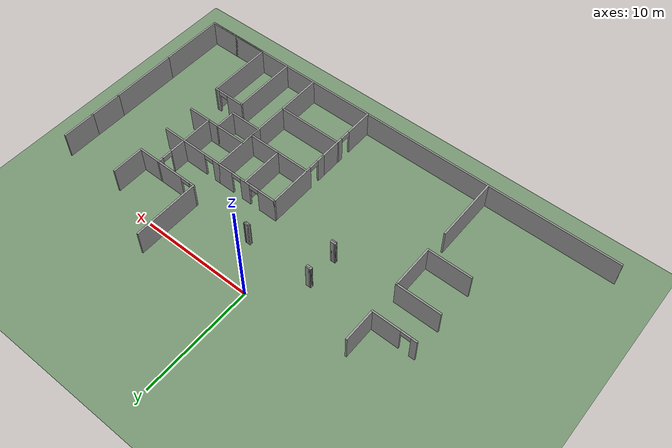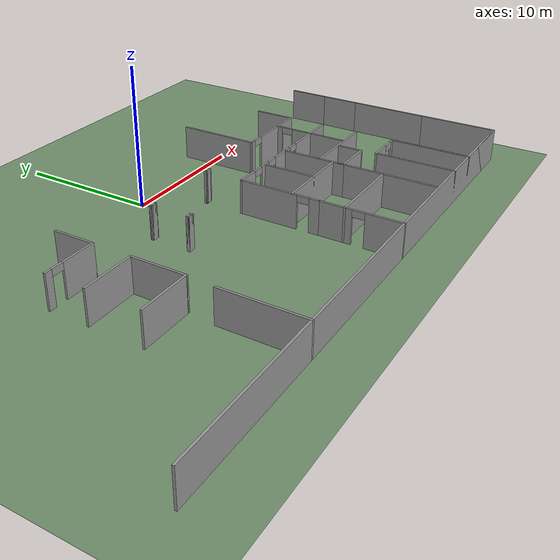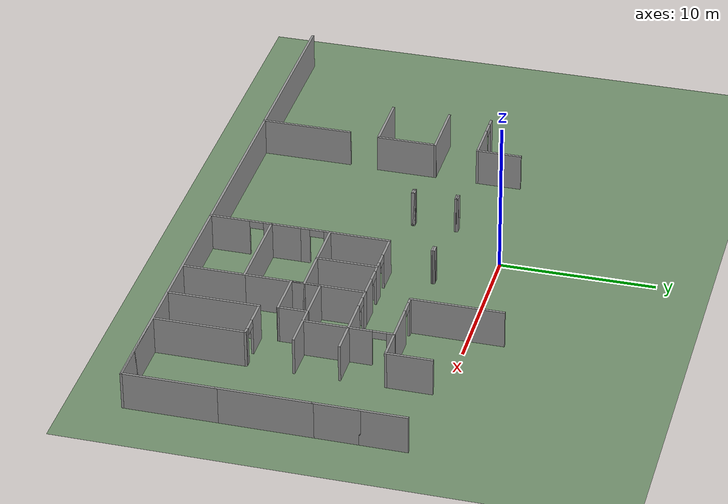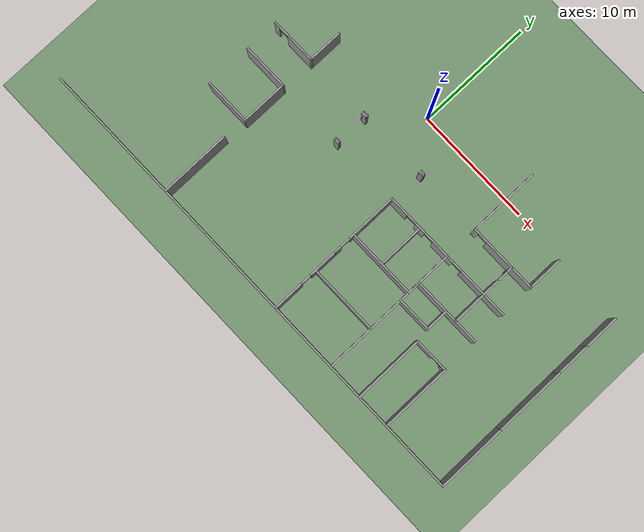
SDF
<sdf version="1.7">
 <world name="default">
  <model name="ground_plane">
   <static>1</static>
   <link name="link">
    <collision name="collision">
     <geometry><plane><normal>0 0 1</normal><size>600 600</size></plane></geometry>
     <surface>
      <contact><collide_bitmask>65535</collide_bitmask></contact>
      <friction><ode><mu>100</mu><mu2>50</mu2></ode></friction>
     </surface>
    </collision>
    <visual name="visual">
     <cast_shadows>0</cast_shadows>
     <geometry><plane><normal>0 0 1</normal><size>100 100</size></plane></geometry>
     <material><ambient>0.45 0.57 0.43 1</ambient><diffuse>0.45 0.57 0.43 1</diffuse></material>
    </visual>
   </link>
  </model>
  <model name="myhal_V3">
   <pose>-0.2201 2.1339 0 0 -0 0</pose>
   <link name="Wall_327">
    <collision name="Wall_327_Collision">
     <geometry><box><size>3 0.15 2.5</size></box></geometry>
     <pose>0 0 1.25 0 -0 0</pose>
    </collision>
    <visual name="Wall_327_Visual">
     <pose>0 0 1.25 0 -0 0</pose>
     <geometry><box><size>3 0.15 2.5</size></box></geometry>
     <material>
      <script><uri>file://media/materials/scripts/gazebo.material</uri><name>Gazebo/Grey</name></script>
      <ambient>1 1 1 1</ambient>
     </material>
     <meta><layer>0</layer></meta>
    </visual>
    <pose>20.475 -4.35 0 0 -0 -1.5708</pose>
   </link>
   <link name="Wall_328">
    <collision name="Wall_328_Collision">
     <geometry><box><size>3 0.15 2.5</size></box></geometry>
     <pose>0 0 1.25 0 -0 0</pose>
    </collision>
    <visual name="Wall_328_Visual">
     <pose>0 0 1.25 0 -0 0</pose>
     <geometry><box><size>3 0.15 2.5</size></box></geometry>
     <material>
      <script><uri>file://media/materials/scripts/gazebo.material</uri><name>Gazebo/Grey</name></script>
      <ambient>1 1 1 1</ambient>
     </material>
     <meta><layer>0</layer></meta>
    </visual>
    <pose>20.475 -7.2 0 0 -0 -1.5708</pose>
   </link>
   <link name="Wall_330">
    <collision name="Wall_330_Collision">
     <geometry><box><size>6 0.15 2.5</size></box></geometry>
     <pose>0 0 1.25 0 -0 0</pose>
    </collision>
    <visual name="Wall_330_Visual">
     <pose>0 0 1.25 0 -0 0</pose>
     <geometry><box><size>6 0.15 2.5</size></box></geometry>
     <material>
      <script><uri>file://media/materials/scripts/gazebo.material</uri><name>Gazebo/Grey</name></script>
      <ambient>1 1 1 1</ambient>
     </material>
     <meta><layer>0</layer></meta>
    </visual>
    <pose>20.475 -11.55 0 0 -0 -1.5708</pose>
   </link>
   <link name="Wall_331">
    <collision name="Wall_331_Collision">
     <geometry><box><size>6 0.15 2.5</size></box></geometry>
     <pose>0 0 1.25 0 -0 0</pose>
    </collision>
    <visual name="Wall_331_Visual">
     <pose>0 0 1.25 0 -0 0</pose>
     <geometry><box><size>6 0.15 2.5</size></box></geometry>
     <material>
      <script><uri>file://media/materials/scripts/gazebo.material</uri><name>Gazebo/Grey</name></script>
      <ambient>1 1 1 1</ambient>
     </material>
     <meta><layer>0</layer></meta>
    </visual>
    <pose>20.475 -17.4 0 0 -0 -1.5708</pose>
   </link>
   <link name="Wall_352">
    <collision name="Wall_352_Collision">
     <geometry><box><size>41 0.15 2.5</size></box></geometry>
     <pose>0 0 1.25 0 -0 0</pose>
    </collision>
    <visual name="Wall_352_Visual">
     <pose>0 0 1.25 0 -0 0</pose>
     <geometry><box><size>41 0.15 2.5</size></box></geometry>
     <material>
      <script><uri>file://media/materials/scripts/gazebo.material</uri><name>Gazebo/Grey</name></script>
      <ambient>1 1 1 1</ambient>
     </material>
     <meta><layer>0</layer></meta>
    </visual>
    <pose>-0.05 -20.325 0 0 -0 0</pose>
   </link>
   <link name="Wall_429">
    <collision name="Wall_429_Collision">
     <geometry><box><size>6 0.15 2.5</size></box></geometry>
     <pose>0 0 1.25 0 -0 0</pose>
    </collision>
    <visual name="Wall_429_Visual">
     <pose>0 0 1.25 0 -0 0</pose>
     <geometry><box><size>6 0.15 2.5</size></box></geometry>
     <material>
      <script><uri>file://media/materials/scripts/gazebo.material</uri><name>Gazebo/Grey</name></script>
      <ambient>1 1 1 1</ambient>
     </material>
     <meta><layer>0</layer></meta>
    </visual>
    <pose>-8.925 -17.4 0 0 -0 1.5708</pose>
   </link>
   <link name="Wall_444">
    <pose>-10.7 -5.775 0 0 -0 0</pose>
    <visual name="Wall_444_Visual_0">
     <pose>-1.73399 0 1.25 0 -0 0</pose>
     <geometry><box><size>0.532014 0.15 2.5</size></box></geometry>
     <material>
      <script><uri>file://media/materials/scripts/gazebo.material</uri><name>Gazebo/Grey</name></script>
      <ambient>1 1 1 1</ambient>
     </material>
     <meta><layer>0</layer></meta>
    </visual>
    <collision name="Wall_444_Collision_0">
     <geometry><box><size>0.532014 0.15 2.5</size></box></geometry>
     <pose>-1.73399 0 1.25 0 -0 0</pose>
    </collision>
    <visual name="Wall_444_Visual_1">
     <pose>0.716007 0 1.25 0 -0 0</pose>
     <geometry><box><size>2.56799 0.15 2.5</size></box></geometry>
     <material>
      <script><uri>file://media/materials/scripts/gazebo.material</uri><name>Gazebo/Grey</name></script>
      <ambient>1 1 1 1</ambient>
     </material>
     <meta><layer>0</layer></meta>
    </visual>
    <collision name="Wall_444_Collision_1">
     <geometry><box><size>2.56799 0.15 2.5</size></box></geometry>
     <pose>0.716007 0 1.25 0 -0 0</pose>
    </collision>
    <visual name="Wall_444_Visual_2">
     <pose>-1.01799 0 2.25 0 -0 0</pose>
     <geometry><box><size>0.9 0.15 0.5</size></box></geometry>
     <material>
      <script><uri>file://media/materials/scripts/gazebo.material</uri><name>Gazebo/Grey</name></script>
      <ambient>1 1 1 1</ambient>
     </material>
     <meta><layer>0</layer></meta>
    </visual>
    <collision name="Wall_444_Collision_2">
     <geometry><box><size>0.9 0.15 0.5</size></box></geometry>
     <pose>-1.01799 0 2.25 0 -0 0</pose>
    </collision>
   </link>
   <link name="Wall_449">
    <collision name="Wall_449_Collision">
     <geometry><box><size>3 0.15 2.5</size></box></geometry>
     <pose>0 0 1.25 0 -0 0</pose>
    </collision>
    <visual name="Wall_449_Visual">
     <pose>0 0 1.25 0 -0 0</pose>
     <geometry><box><size>3 0.15 2.5</size></box></geometry>
     <material>
      <script><uri>file://media/materials/scripts/gazebo.material</uri><name>Gazebo/Grey</name></script>
      <ambient>1 1 1 1</ambient>
     </material>
     <meta><layer>0</layer></meta>
    </visual>
    <pose>-8.775 -4.35 0 0 -0 -1.5708</pose>
   </link>
   <link name="Wall_458">
    <collision name="Wall_458_Collision">
     <geometry><box><size>4 0.15 2.5</size></box></geometry>
     <pose>0 0 1.25 0 -0 0</pose>
    </collision>
    <visual name="Wall_458_Visual">
     <pose>0 0 1.25 0 -0 0</pose>
     <geometry><box><size>4 0.15 2.5</size></box></geometry>
     <material>
      <script><uri>file://media/materials/scripts/gazebo.material</uri><name>Gazebo/Grey</name></script>
      <ambient>1 1 1 1</ambient>
     </material>
     <meta><layer>0</layer></meta>
    </visual>
    <pose>-10.7 -8.625 0 0 -0 0</pose>
   </link>
   <link name="Wall_461">
    <collision name="Wall_461_Collision">
     <geometry><box><size>4 0.15 2.5</size></box></geometry>
     <pose>0 0 1.25 0 -0 0</pose>
    </collision>
    <visual name="Wall_461_Visual">
     <pose>0 0 1.25 0 -0 0</pose>
     <geometry><box><size>4 0.15 2.5</size></box></geometry>
     <material>
      <script><uri>file://media/materials/scripts/gazebo.material</uri><name>Gazebo/Grey</name></script>
      <ambient>1 1 1 1</ambient>
     </material>
     <meta><layer>0</layer></meta>
    </visual>
    <pose>-10.7 -12.475 0 0 -0 0</pose>
   </link>
   <link name="Wall_462">
    <collision name="Wall_462_Collision">
     <geometry><box><size>4 0.15 2.5</size></box></geometry>
     <pose>0 0 1.25 0 -0 0</pose>
    </collision>
    <visual name="Wall_462_Visual">
     <pose>0 0 1.25 0 -0 0</pose>
     <geometry><box><size>4 0.15 2.5</size></box></geometry>
     <material>
      <script><uri>file://media/materials/scripts/gazebo.material</uri><name>Gazebo/Grey</name></script>
      <ambient>1 1 1 1</ambient>
     </material>
     <meta><layer>0</layer></meta>
    </visual>
    <pose>-8.775 -10.55 0 0 -0 1.5708</pose>
   </link>
   <link name="Wall_475">
    <collision name="Wall_475_Collision">
     <geometry><box><size>3 0.15 2.5</size></box></geometry>
     <pose>0 0 1.25 0 -0 0</pose>
    </collision>
    <visual name="Wall_475_Visual">
     <pose>0 0 1.25 0 -0 0</pose>
     <geometry><box><size>3 0.15 2.5</size></box></geometry>
     <material>
      <script><uri>file://media/materials/scripts/gazebo.material</uri><name>Gazebo/Grey</name></script>
      <ambient>1 1 1 1</ambient>
     </material>
     <meta><layer>0</layer></meta>
    </visual>
    <pose>14.625 -4.35 0 0 -0 -1.5708</pose>
   </link>
   <link name="Wall_476">
    <pose>11.7 -5.775 0 0 -0 3.14159</pose>
    <visual name="Wall_476_Visual_0">
     <pose>-0.696561 0 1.25 0 -0 0</pose>
     <geometry><box><size>4.60688 0.15 2.5</size></box></geometry>
     <material>
      <script><uri>file://media/materials/scripts/gazebo.material</uri><name>Gazebo/Grey</name></script>
      <ambient>1 1 1 1</ambient>
     </material>
     <meta><layer>0</layer></meta>
    </visual>
    <collision name="Wall_476_Collision_0">
     <geometry><box><size>4.60688 0.15 2.5</size></box></geometry>
     <pose>-0.696561 0 1.25 0 -0 0</pose>
    </collision>
    <visual name="Wall_476_Visual_1">
     <pose>2.75344 0 1.25 0 -0 0</pose>
     <geometry><box><size>0.493122 0.15 2.5</size></box></geometry>
     <material>
      <script><uri>file://media/materials/scripts/gazebo.material</uri><name>Gazebo/Grey</name></script>
      <ambient>1 1 1 1</ambient>
     </material>
     <meta><layer>0</layer></meta>
    </visual>
    <collision name="Wall_476_Collision_1">
     <geometry><box><size>0.493122 0.15 2.5</size></box></geometry>
     <pose>2.75344 0 1.25 0 -0 0</pose>
    </collision>
    <visual name="Wall_476_Visual_2">
     <pose>2.05688 0 2.25 0 -0 0</pose>
     <geometry><box><size>0.9 0.15 0.5</size></box></geometry>
     <material>
      <script><uri>file://media/materials/scripts/gazebo.material</uri><name>Gazebo/Grey</name></script>
      <ambient>1 1 1 1</ambient>
     </material>
     <meta><layer>0</layer></meta>
    </visual>
    <collision name="Wall_476_Collision_2">
     <geometry><box><size>0.9 0.15 0.5</size></box></geometry>
     <pose>2.05688 0 2.25 0 -0 0</pose>
    </collision>
   </link>
   <link name="Wall_477">
    <collision name="Wall_477_Collision">
     <geometry><box><size>6 0.15 2.5</size></box></geometry>
     <pose>0 0 1.25 0 -0 0</pose>
    </collision>
    <visual name="Wall_477_Visual">
     <pose>0 0 1.25 0 -0 0</pose>
     <geometry><box><size>6 0.15 2.5</size></box></geometry>
     <material>
      <script><uri>file://media/materials/scripts/gazebo.material</uri><name>Gazebo/Grey</name></script>
      <ambient>1 1 1 1</ambient>
     </material>
     <meta><layer>0</layer></meta>
    </visual>
    <pose>8.775 -2.85 0 0 -0 1.5708</pose>
   </link>
   <link name="Wall_482">
    <pose>2.925 -11.55 0 0 -0 -1.5708</pose>
    <visual name="Wall_482_Visual_0">
     <pose>-0.826638 0 1.25 0 -0 0</pose>
     <geometry><box><size>4.34672 0.15 2.5</size></box></geometry>
     <material>
      <script><uri>file://media/materials/scripts/gazebo.material</uri><name>Gazebo/Grey</name></script>
      <ambient>1 1 1 1</ambient>
     </material>
     <meta><layer>0</layer></meta>
    </visual>
    <collision name="Wall_482_Collision_0">
     <geometry><box><size>4.34672 0.15 2.5</size></box></geometry>
     <pose>-0.826638 0 1.25 0 -0 0</pose>
    </collision>
    <visual name="Wall_482_Visual_1">
     <pose>2.62336 0 1.25 0 -0 0</pose>
     <geometry><box><size>0.753277 0.15 2.5</size></box></geometry>
     <material>
      <script><uri>file://media/materials/scripts/gazebo.material</uri><name>Gazebo/Grey</name></script>
      <ambient>1 1 1 1</ambient>
     </material>
     <meta><layer>0</layer></meta>
    </visual>
    <collision name="Wall_482_Collision_1">
     <geometry><box><size>0.753277 0.15 2.5</size></box></geometry>
     <pose>2.62336 0 1.25 0 -0 0</pose>
    </collision>
    <visual name="Wall_482_Visual_2">
     <pose>1.79672 0 2.25 0 -0 0</pose>
     <geometry><box><size>0.9 0.15 0.5</size></box></geometry>
     <material>
      <script><uri>file://media/materials/scripts/gazebo.material</uri><name>Gazebo/Grey</name></script>
      <ambient>1 1 1 1</ambient>
     </material>
     <meta><layer>0</layer></meta>
    </visual>
    <collision name="Wall_482_Collision_2">
     <geometry><box><size>0.9 0.15 0.5</size></box></geometry>
     <pose>1.79672 0 2.25 0 -0 0</pose>
    </collision>
   </link>
   <link name="Wall_484">
    <pose>2.925 -17.4 0 0 -0 -1.5708</pose>
    <visual name="Wall_484_Visual_0">
     <pose>-1.77874 0 1.25 0 -0 0</pose>
     <geometry><box><size>2.44252 0.15 2.5</size></box></geometry>
     <material>
      <script><uri>file://media/materials/scripts/gazebo.material</uri><name>Gazebo/Grey</name></script>
      <ambient>1 1 1 1</ambient>
     </material>
     <meta><layer>0</layer></meta>
    </visual>
    <collision name="Wall_484_Collision_0">
     <geometry><box><size>2.44252 0.15 2.5</size></box></geometry>
     <pose>-1.77874 0 1.25 0 -0 0</pose>
    </collision>
    <visual name="Wall_484_Visual_1">
     <pose>1.67126 0 1.25 0 -0 0</pose>
     <geometry><box><size>2.65748 0.15 2.5</size></box></geometry>
     <material>
      <script><uri>file://media/materials/scripts/gazebo.material</uri><name>Gazebo/Grey</name></script>
      <ambient>1 1 1 1</ambient>
     </material>
     <meta><layer>0</layer></meta>
    </visual>
    <collision name="Wall_484_Collision_1">
     <geometry><box><size>2.65748 0.15 2.5</size></box></geometry>
     <pose>1.67126 0 1.25 0 -0 0</pose>
    </collision>
    <visual name="Wall_484_Visual_2">
     <pose>-0.107481 0 2.25 0 -0 0</pose>
     <geometry><box><size>0.9 0.15 0.5</size></box></geometry>
     <material>
      <script><uri>file://media/materials/scripts/gazebo.material</uri><name>Gazebo/Grey</name></script>
      <ambient>1 1 1 1</ambient>
     </material>
     <meta><layer>0</layer></meta>
    </visual>
    <collision name="Wall_484_Collision_2">
     <geometry><box><size>0.9 0.15 0.5</size></box></geometry>
     <pose>-0.107481 0 2.25 0 -0 0</pose>
    </collision>
   </link>
   <link name="Wall_486">
    <pose>5.85 -8.625 0 0 -0 0</pose>
    <visual name="Wall_486_Visual_0">
     <pose>-2.13314 0 1.25 0 -0 0</pose>
     <geometry><box><size>1.73371 0.15 2.5</size></box></geometry>
     <material>
      <script><uri>file://media/materials/scripts/gazebo.material</uri><name>Gazebo/Grey</name></script>
      <ambient>1 1 1 1</ambient>
     </material>
     <meta><layer>0</layer></meta>
    </visual>
    <collision name="Wall_486_Collision_0">
     <geometry><box><size>1.73371 0.15 2.5</size></box></geometry>
     <pose>-2.13314 0 1.25 0 -0 0</pose>
    </collision>
    <visual name="Wall_486_Visual_1">
     <pose>0.10739 0 1.25 0 -0 0</pose>
     <geometry><box><size>0.94735 0.15 2.5</size></box></geometry>
     <material>
      <script><uri>file://media/materials/scripts/gazebo.material</uri><name>Gazebo/Grey</name></script>
      <ambient>1 1 1 1</ambient>
     </material>
     <meta><layer>0</layer></meta>
    </visual>
    <collision name="Wall_486_Collision_1">
     <geometry><box><size>0.94735 0.15 2.5</size></box></geometry>
     <pose>0.10739 0 1.25 0 -0 0</pose>
    </collision>
    <visual name="Wall_486_Visual_2">
     <pose>2.24053 0 1.25 0 -0 0</pose>
     <geometry><box><size>1.51893 0.15 2.5</size></box></geometry>
     <material>
      <script><uri>file://media/materials/scripts/gazebo.material</uri><name>Gazebo/Grey</name></script>
      <ambient>1 1 1 1</ambient>
     </material>
     <meta><layer>0</layer></meta>
    </visual>
    <collision name="Wall_486_Collision_2">
     <geometry><box><size>1.51893 0.15 2.5</size></box></geometry>
     <pose>2.24053 0 1.25 0 -0 0</pose>
    </collision>
    <visual name="Wall_486_Visual_3">
     <pose>-0.816286 0 2.25 0 -0 0</pose>
     <geometry><box><size>0.9 0.15 0.5</size></box></geometry>
     <material>
      <script><uri>file://media/materials/scripts/gazebo.material</uri><name>Gazebo/Grey</name></script>
      <ambient>1 1 1 1</ambient>
     </material>
     <meta><layer>0</layer></meta>
    </visual>
    <collision name="Wall_486_Collision_3">
     <geometry><box><size>0.9 0.15 0.5</size></box></geometry>
     <pose>-0.816286 0 2.25 0 -0 0</pose>
    </collision>
    <visual name="Wall_486_Visual_4">
     <pose>1.03106 0 2.25 0 -0 0</pose>
     <geometry><box><size>0.9 0.15 0.5</size></box></geometry>
     <material>
      <script><uri>file://media/materials/scripts/gazebo.material</uri><name>Gazebo/Grey</name></script>
      <ambient>1 1 1 1</ambient>
     </material>
     <meta><layer>0</layer></meta>
    </visual>
    <collision name="Wall_486_Collision_4">
     <geometry><box><size>0.9 0.15 0.5</size></box></geometry>
     <pose>1.03106 0 2.25 0 -0 0</pose>
    </collision>
   </link>
   <link name="Wall_487">
    <collision name="Wall_487_Collision">
     <geometry><box><size>4.01793 0.15 2.5</size></box></geometry>
     <pose>0 0 1.25 0 -0 0</pose>
    </collision>
    <visual name="Wall_487_Visual">
     <pose>0 0 1.25 0 -0 0</pose>
     <geometry><box><size>4.01793 0.15 2.5</size></box></geometry>
     <material>
      <script><uri>file://media/materials/scripts/gazebo.material</uri><name>Gazebo/Grey</name></script>
      <ambient>1 1 1 1</ambient>
     </material>
     <meta><layer>0</layer></meta>
    </visual>
    <pose>8.775 -10.559 0 0 -0 -1.5708</pose>
   </link>
   <link name="Wall_488">
    <collision name="Wall_488_Collision">
     <geometry><box><size>3.98206 0.15 2.5</size></box></geometry>
     <pose>0 0 1.25 0 -0 0</pose>
    </collision>
    <visual name="Wall_488_Visual">
     <pose>0 0 1.25 0 -0 0</pose>
     <geometry><box><size>3.98206 0.15 2.5</size></box></geometry>
     <material>
      <script><uri>file://media/materials/scripts/gazebo.material</uri><name>Gazebo/Grey</name></script>
      <ambient>1 1 1 1</ambient>
     </material>
     <meta><layer>0</layer></meta>
    </visual>
    <pose>8.775 -14.409 0 0 -0 -1.5708</pose>
   </link>
   <link name="Wall_489">
    <collision name="Wall_489_Collision">
     <geometry><box><size>4 0.15 2.5</size></box></geometry>
     <pose>0 0 1.25 0 -0 0</pose>
    </collision>
    <visual name="Wall_489_Visual">
     <pose>0 0 1.25 0 -0 0</pose>
     <geometry><box><size>4 0.15 2.5</size></box></geometry>
     <material>
      <script><uri>file://media/materials/scripts/gazebo.material</uri><name>Gazebo/Grey</name></script>
      <ambient>1 1 1 1</ambient>
     </material>
     <meta><layer>0</layer></meta>
    </visual>
    <pose>8.775 -18.25 0 0 -0 -1.5708</pose>
   </link>
   <link name="Wall_492">
    <collision name="Wall_492_Collision">
     <geometry><box><size>6 0.15 2.5</size></box></geometry>
     <pose>0 0 1.25 0 -0 0</pose>
    </collision>
    <visual name="Wall_492_Visual">
     <pose>0 0 1.25 0 -0 0</pose>
     <geometry><box><size>6 0.15 2.5</size></box></geometry>
     <material>
      <script><uri>file://media/materials/scripts/gazebo.material</uri><name>Gazebo/Grey</name></script>
      <ambient>1 1 1 1</ambient>
     </material>
     <meta><layer>0</layer></meta>
    </visual>
    <pose>5.85 -12.4929 0 0 -0 3.14159</pose>
   </link>
   <link name="Wall_495">
    <collision name="Wall_495_Collision">
     <geometry><box><size>6 0.15 2.5</size></box></geometry>
     <pose>0 0 1.25 0 -0 0</pose>
    </collision>
    <visual name="Wall_495_Visual">
     <pose>0 0 1.25 0 -0 0</pose>
     <geometry><box><size>6 0.15 2.5</size></box></geometry>
     <material>
      <script><uri>file://media/materials/scripts/gazebo.material</uri><name>Gazebo/Grey</name></script>
      <ambient>1 1 1 1</ambient>
     </material>
     <meta><layer>0</layer></meta>
    </visual>
    <pose>5.85 -16.325 0 0 -0 3.14159</pose>
   </link>
   <link name="Wall_507">
    <pose>11.7 -8.625 0 0 -0 0</pose>
    <visual name="Wall_507_Visual_0">
     <pose>-2.65028 0 1.25 0 -0 0</pose>
     <geometry><box><size>0.699436 0.15 2.5</size></box></geometry>
     <material>
      <script><uri>file://media/materials/scripts/gazebo.material</uri><name>Gazebo/Grey</name></script>
      <ambient>1 1 1 1</ambient>
     </material>
     <meta><layer>0</layer></meta>
    </visual>
    <collision name="Wall_507_Collision_0">
     <geometry><box><size>0.699436 0.15 2.5</size></box></geometry>
     <pose>-2.65028 0 1.25 0 -0 0</pose>
    </collision>
    <visual name="Wall_507_Visual_1">
     <pose>0.799718 0 1.25 0 -0 0</pose>
     <geometry><box><size>4.40056 0.15 2.5</size></box></geometry>
     <material>
      <script><uri>file://media/materials/scripts/gazebo.material</uri><name>Gazebo/Grey</name></script>
      <ambient>1 1 1 1</ambient>
     </material>
     <meta><layer>0</layer></meta>
    </visual>
    <collision name="Wall_507_Collision_1">
     <geometry><box><size>4.40056 0.15 2.5</size></box></geometry>
     <pose>0.799718 0 1.25 0 -0 0</pose>
    </collision>
    <visual name="Wall_507_Visual_2">
     <pose>-1.85056 0 2.25 0 -0 0</pose>
     <geometry><box><size>0.9 0.15 0.5</size></box></geometry>
     <material>
      <script><uri>file://media/materials/scripts/gazebo.material</uri><name>Gazebo/Grey</name></script>
      <ambient>1 1 1 1</ambient>
     </material>
     <meta><layer>0</layer></meta>
    </visual>
    <collision name="Wall_507_Collision_2">
     <geometry><box><size>0.9 0.15 0.5</size></box></geometry>
     <pose>-1.85056 0 2.25 0 -0 0</pose>
    </collision>
   </link>
   <link name="Wall_521">
    <collision name="Wall_521_Collision">
     <geometry><box><size>6 0.15 2.5</size></box></geometry>
     <pose>0 0 1.25 0 -0 0</pose>
    </collision>
    <visual name="Wall_521_Visual">
     <pose>0 0 1.25 0 -0 0</pose>
     <geometry><box><size>6 0.15 2.5</size></box></geometry>
     <material>
      <script><uri>file://media/materials/scripts/gazebo.material</uri><name>Gazebo/Grey</name></script>
      <ambient>1 1 1 1</ambient>
     </material>
     <meta><layer>0</layer></meta>
    </visual>
    <pose>17.55 -20.325 0 0 -0 3.14159</pose>
   </link>
   <link name="Wall_522">
    <collision name="Wall_522_Collision">
     <geometry><box><size>6 0.15 2.5</size></box></geometry>
     <pose>0 0 1.25 0 -0 0</pose>
    </collision>
    <visual name="Wall_522_Visual">
     <pose>0 0 1.25 0 -0 0</pose>
     <geometry><box><size>6 0.15 2.5</size></box></geometry>
     <material>
      <script><uri>file://media/materials/scripts/gazebo.material</uri><name>Gazebo/Grey</name></script>
      <ambient>1 1 1 1</ambient>
     </material>
     <meta><layer>0</layer></meta>
    </visual>
    <pose>14.625 -17.4 0 0 -0 1.5708</pose>
   </link>
   <link name="Wall_523">
    <pose>13.2 -14.475 0 0 -0 3.14159</pose>
    <visual name="Wall_523_Visual_0">
     <pose>-1.27635 0 1.25 0 -0 0</pose>
     <geometry><box><size>0.447294 0.15 2.5</size></box></geometry>
     <material>
      <script><uri>file://media/materials/scripts/gazebo.material</uri><name>Gazebo/Grey</name></script>
      <ambient>1 1 1 1</ambient>
     </material>
     <meta><layer>0</layer></meta>
    </visual>
    <collision name="Wall_523_Collision_0">
     <geometry><box><size>0.447294 0.15 2.5</size></box></geometry>
     <pose>-1.27635 0 1.25 0 -0 0</pose>
    </collision>
    <visual name="Wall_523_Visual_1">
     <pose>0.673647 0 1.25 0 -0 0</pose>
     <geometry><box><size>1.65271 0.15 2.5</size></box></geometry>
     <material>
      <script><uri>file://media/materials/scripts/gazebo.material</uri><name>Gazebo/Grey</name></script>
      <ambient>1 1 1 1</ambient>
     </material>
     <meta><layer>0</layer></meta>
    </visual>
    <collision name="Wall_523_Collision_1">
     <geometry><box><size>1.65271 0.15 2.5</size></box></geometry>
     <pose>0.673647 0 1.25 0 -0 0</pose>
    </collision>
    <visual name="Wall_523_Visual_2">
     <pose>-0.602706 0 2.25 0 -0 0</pose>
     <geometry><box><size>0.9 0.15 0.5</size></box></geometry>
     <material>
      <script><uri>file://media/materials/scripts/gazebo.material</uri><name>Gazebo/Grey</name></script>
      <ambient>1 1 1 1</ambient>
     </material>
     <meta><layer>0</layer></meta>
    </visual>
    <collision name="Wall_523_Collision_2">
     <geometry><box><size>0.9 0.15 0.5</size></box></geometry>
     <pose>-0.602706 0 2.25 0 -0 0</pose>
    </collision>
   </link>
   <link name="Wall_524">
    <collision name="Wall_524_Collision">
     <geometry><box><size>6 0.15 2.5</size></box></geometry>
     <pose>0 0 1.25 0 -0 0</pose>
    </collision>
    <visual name="Wall_524_Visual">
     <pose>0 0 1.25 0 -0 0</pose>
     <geometry><box><size>6 0.15 2.5</size></box></geometry>
     <material>
      <script><uri>file://media/materials/scripts/gazebo.material</uri><name>Gazebo/Grey</name></script>
      <ambient>1 1 1 1</ambient>
     </material>
     <meta><layer>0</layer></meta>
    </visual>
    <pose>11.775 -17.4 0 0 -0 -1.5708</pose>
   </link>
   <link name="Wall_527">
    <collision name="Wall_527_Collision">
     <geometry><box><size>6 0.15 2.5</size></box></geometry>
     <pose>0 0 1.25 0 -0 0</pose>
    </collision>
    <visual name="Wall_527_Visual">
     <pose>0 0 1.25 0 -0 0</pose>
     <geometry><box><size>6 0.15 2.5</size></box></geometry>
     <material>
      <script><uri>file://media/materials/scripts/gazebo.material</uri><name>Gazebo/Grey</name></script>
      <ambient>1 1 1 1</ambient>
     </material>
     <meta><layer>0</layer></meta>
    </visual>
    <pose>11.7 -11.475 0 0 -0 3.14159</pose>
   </link>
   <link name="Wall_530">
    <collision name="Wall_530_Collision">
     <geometry><box><size>3 0.15 2.5</size></box></geometry>
     <pose>0 0 1.25 0 -0 0</pose>
    </collision>
    <visual name="Wall_530_Visual">
     <pose>0 0 1.25 0 -0 0</pose>
     <geometry><box><size>3 0.15 2.5</size></box></geometry>
     <material>
      <script><uri>file://media/materials/scripts/gazebo.material</uri><name>Gazebo/Grey</name></script>
      <ambient>1 1 1 1</ambient>
     </material>
     <meta><layer>0</layer></meta>
    </visual>
    <pose>12.625 -10.05 0 0 -0 1.5708</pose>
   </link>
   <link name="Wall_532">
    <collision name="Wall_532_Collision">
     <geometry><box><size>2 0.15 2.5</size></box></geometry>
     <pose>0 0 1.25 0 -0 0</pose>
    </collision>
    <visual name="Wall_532_Visual">
     <pose>0 0 1.25 0 -0 0</pose>
     <geometry><box><size>2 0.15 2.5</size></box></geometry>
     <material>
      <script><uri>file://media/materials/scripts/gazebo.material</uri><name>Gazebo/Grey</name></script>
      <ambient>1 1 1 1</ambient>
     </material>
     <meta><layer>0</layer></meta>
    </visual>
    <pose>8.775 -12.4 0 0 -0 -1.5708</pose>
   </link>
   <link name="Wall_533">
    <collision name="Wall_533_Collision">
     <geometry><box><size>3 0.15 2.5</size></box></geometry>
     <pose>0 0 1.25 0 -0 0</pose>
    </collision>
    <visual name="Wall_533_Visual">
     <pose>0 0 1.25 0 -0 0</pose>
     <geometry><box><size>3 0.15 2.5</size></box></geometry>
     <material>
      <script><uri>file://media/materials/scripts/gazebo.material</uri><name>Gazebo/Grey</name></script>
      <ambient>1 1 1 1</ambient>
     </material>
     <meta><layer>0</layer></meta>
    </visual>
    <pose>10.2 -13.325 0 0 -0 0</pose>
   </link>
   <link name="Wall_534">
    <collision name="Wall_534_Collision">
     <geometry><box><size>2 0.15 2.5</size></box></geometry>
     <pose>0 0 1.25 0 -0 0</pose>
    </collision>
    <visual name="Wall_534_Visual">
     <pose>0 0 1.25 0 -0 0</pose>
     <geometry><box><size>2 0.15 2.5</size></box></geometry>
     <material>
      <script><uri>file://media/materials/scripts/gazebo.material</uri><name>Gazebo/Grey</name></script>
      <ambient>1 1 1 1</ambient>
     </material>
     <meta><layer>0</layer></meta>
    </visual>
    <pose>11.625 -12.4 0 0 -0 1.5708</pose>
   </link>
   <link name="Wall_536">
    <pose>12.625 -7.2 0 0 -0 1.5708</pose>
    <visual name="Wall_536_Visual_0">
     <pose>-0.714799 0 1.25 0 -0 0</pose>
     <geometry><box><size>1.5704 0.15 2.5</size></box></geometry>
     <material>
      <script><uri>file://media/materials/scripts/gazebo.material</uri><name>Gazebo/Grey</name></script>
      <ambient>1 1 1 1</ambient>
     </material>
     <meta><layer>0</layer></meta>
    </visual>
    <collision name="Wall_536_Collision_0">
     <geometry><box><size>1.5704 0.15 2.5</size></box></geometry>
     <pose>-0.714799 0 1.25 0 -0 0</pose>
    </collision>
    <visual name="Wall_536_Visual_1">
     <pose>1.2352 0 1.25 0 -0 0</pose>
     <geometry><box><size>0.529598 0.15 2.5</size></box></geometry>
     <material>
      <script><uri>file://media/materials/scripts/gazebo.material</uri><name>Gazebo/Grey</name></script>
      <ambient>1 1 1 1</ambient>
     </material>
     <meta><layer>0</layer></meta>
    </visual>
    <collision name="Wall_536_Collision_1">
     <geometry><box><size>0.529598 0.15 2.5</size></box></geometry>
     <pose>1.2352 0 1.25 0 -0 0</pose>
    </collision>
    <visual name="Wall_536_Visual_2">
     <pose>0.520402 0 2.25 0 -0 0</pose>
     <geometry><box><size>0.9 0.15 0.5</size></box></geometry>
     <material>
      <script><uri>file://media/materials/scripts/gazebo.material</uri><name>Gazebo/Grey</name></script>
      <ambient>1 1 1 1</ambient>
     </material>
     <meta><layer>0</layer></meta>
    </visual>
    <collision name="Wall_536_Collision_2">
     <geometry><box><size>0.9 0.15 0.5</size></box></geometry>
     <pose>0.520402 0 2.25 0 -0 0</pose>
    </collision>
   </link>
   <link name="Wall_540">
    <collision name="Wall_540_Collision">
     <geometry><box><size>0.5 0.15 2.5</size></box></geometry>
     <pose>0 0 1.25 0 -0 0</pose>
    </collision>
    <visual name="Wall_540_Visual">
     <pose>0 0 1.25 0 -0 0</pose>
     <geometry><box><size>0.5 0.15 2.5</size></box></geometry>
     <material>
      <script><uri>file://media/materials/scripts/gazebo.material</uri><name>Gazebo/Grey</name></script>
      <ambient>1 1 1 1</ambient>
     </material>
     <meta><layer>0</layer></meta>
    </visual>
    <pose>-3 -8.625 0 0 -0 0</pose>
   </link>
   <link name="Wall_542">
    <collision name="Wall_542_Collision">
     <geometry><box><size>0.25 0.15 2.5</size></box></geometry>
     <pose>0 0 1.25 0 -0 0</pose>
    </collision>
    <visual name="Wall_542_Visual">
     <pose>0 0 1.25 0 -0 0</pose>
     <geometry><box><size>0.25 0.15 2.5</size></box></geometry>
     <material>
      <script><uri>file://media/materials/scripts/gazebo.material</uri><name>Gazebo/Grey</name></script>
      <ambient>1 1 1 1</ambient>
     </material>
     <meta><layer>0</layer></meta>
    </visual>
    <pose>-3.175 -8.575 0 0 -0 1.5708</pose>
   </link>
   <link name="Wall_543">
    <collision name="Wall_543_Collision">
     <geometry><box><size>0.5 0.15 2.5</size></box></geometry>
     <pose>0 0 1.25 0 -0 0</pose>
    </collision>
    <visual name="Wall_543_Visual">
     <pose>0 0 1.25 0 -0 0</pose>
     <geometry><box><size>0.5 0.15 2.5</size></box></geometry>
     <material>
      <script><uri>file://media/materials/scripts/gazebo.material</uri><name>Gazebo/Grey</name></script>
      <ambient>1 1 1 1</ambient>
     </material>
     <meta><layer>0</layer></meta>
    </visual>
    <pose>-3 -8.525 0 0 -0 0</pose>
   </link>
   <link name="Wall_545">
    <collision name="Wall_545_Collision">
     <geometry><box><size>0.25 0.15 2.5</size></box></geometry>
     <pose>0 0 1.25 0 -0 0</pose>
    </collision>
    <visual name="Wall_545_Visual">
     <pose>0 0 1.25 0 -0 0</pose>
     <geometry><box><size>0.25 0.15 2.5</size></box></geometry>
     <material>
      <script><uri>file://media/materials/scripts/gazebo.material</uri><name>Gazebo/Grey</name></script>
      <ambient>1 1 1 1</ambient>
     </material>
     <meta><layer>0</layer></meta>
    </visual>
    <pose>-2.825 -8.575 0 0 -0 -1.5708</pose>
   </link>
   <link name="Wall_548">
    <collision name="Wall_548_Collision">
     <geometry><box><size>0.5 0.15 2.5</size></box></geometry>
     <pose>0 0 1.25 0 -0 0</pose>
    </collision>
    <visual name="Wall_548_Visual">
     <pose>0 0 1.25 0 -0 0</pose>
     <geometry><box><size>0.5 0.15 2.5</size></box></geometry>
     <material>
      <script><uri>file://media/materials/scripts/gazebo.material</uri><name>Gazebo/Grey</name></script>
      <ambient>1 1 1 1</ambient>
     </material>
     <meta><layer>0</layer></meta>
    </visual>
    <pose>-3 -5.775 0 0 -0 0</pose>
   </link>
   <link name="Wall_550">
    <collision name="Wall_550_Collision">
     <geometry><box><size>0.25 0.15 2.5</size></box></geometry>
     <pose>0 0 1.25 0 -0 0</pose>
    </collision>
    <visual name="Wall_550_Visual">
     <pose>0 0 1.25 0 -0 0</pose>
     <geometry><box><size>0.25 0.15 2.5</size></box></geometry>
     <material>
      <script><uri>file://media/materials/scripts/gazebo.material</uri><name>Gazebo/Grey</name></script>
      <ambient>1 1 1 1</ambient>
     </material>
     <meta><layer>0</layer></meta>
    </visual>
    <pose>-3.175 -5.725 0 0 -0 1.5708</pose>
   </link>
   <link name="Wall_551">
    <collision name="Wall_551_Collision">
     <geometry><box><size>0.5 0.15 2.5</size></box></geometry>
     <pose>0 0 1.25 0 -0 0</pose>
    </collision>
    <visual name="Wall_551_Visual">
     <pose>0 0 1.25 0 -0 0</pose>
     <geometry><box><size>0.5 0.15 2.5</size></box></geometry>
     <material>
      <script><uri>file://media/materials/scripts/gazebo.material</uri><name>Gazebo/Grey</name></script>
      <ambient>1 1 1 1</ambient>
     </material>
     <meta><layer>0</layer></meta>
    </visual>
    <pose>-3 -5.675 0 0 -0 0</pose>
   </link>
   <link name="Wall_553">
    <collision name="Wall_553_Collision">
     <geometry><box><size>0.25 0.15 2.5</size></box></geometry>
     <pose>0 0 1.25 0 -0 0</pose>
    </collision>
    <visual name="Wall_553_Visual">
     <pose>0 0 1.25 0 -0 0</pose>
     <geometry><box><size>0.25 0.15 2.5</size></box></geometry>
     <material>
      <script><uri>file://media/materials/scripts/gazebo.material</uri><name>Gazebo/Grey</name></script>
      <ambient>1 1 1 1</ambient>
     </material>
     <meta><layer>0</layer></meta>
    </visual>
    <pose>-2.825 -5.725 0 0 -0 -1.5708</pose>
   </link>
   <link name="Wall_558">
    <collision name="Wall_558_Collision">
     <geometry><box><size>0.49776 0.15 2.5</size></box></geometry>
     <pose>0 0 1.25 0 -0 0</pose>
    </collision>
    <visual name="Wall_558_Visual">
     <pose>0 0 1.25 0 -0 0</pose>
     <geometry><box><size>0.49776 0.15 2.5</size></box></geometry>
     <material>
      <script><uri>file://media/materials/scripts/gazebo.material</uri><name>Gazebo/Grey</name></script>
      <ambient>1 1 1 1</ambient>
     </material>
     <meta><layer>0</layer></meta>
    </visual>
    <pose>3.09888 -5.77612 0 0 -0 -0.006463</pose>
   </link>
   <link name="Wall_572">
    <collision name="Wall_572_Collision">
     <geometry><box><size>0.25 0.15 2.5</size></box></geometry>
     <pose>0 0 1.25 0 -0 0</pose>
    </collision>
    <visual name="Wall_572_Visual">
     <pose>0 0 1.25 0 -0 0</pose>
     <geometry><box><size>0.25 0.15 2.5</size></box></geometry>
     <material>
      <script><uri>file://media/materials/scripts/gazebo.material</uri><name>Gazebo/Grey</name></script>
      <ambient>1 1 1 1</ambient>
     </material>
     <meta><layer>0</layer></meta>
    </visual>
    <pose>2.925 -5.725 0 0 -0 1.5708</pose>
   </link>
   <link name="Wall_573">
    <collision name="Wall_573_Collision">
     <geometry><box><size>0.5 0.15 2.5</size></box></geometry>
     <pose>0 0 1.25 0 -0 0</pose>
    </collision>
    <visual name="Wall_573_Visual">
     <pose>0 0 1.25 0 -0 0</pose>
     <geometry><box><size>0.5 0.15 2.5</size></box></geometry>
     <material>
      <script><uri>file://media/materials/scripts/gazebo.material</uri><name>Gazebo/Grey</name></script>
      <ambient>1 1 1 1</ambient>
     </material>
     <meta><layer>0</layer></meta>
    </visual>
    <pose>3.1 -5.675 0 0 -0 0</pose>
   </link>
   <link name="Wall_575">
    <collision name="Wall_575_Collision">
     <geometry><box><size>0.252272 0.15 2.5</size></box></geometry>
     <pose>0 0 1.25 0 -0 0</pose>
    </collision>
    <visual name="Wall_575_Visual">
     <pose>0 0 1.25 0 -0 0</pose>
     <geometry><box><size>0.252272 0.15 2.5</size></box></geometry>
     <material>
      <script><uri>file://media/materials/scripts/gazebo.material</uri><name>Gazebo/Grey</name></script>
      <ambient>1 1 1 1</ambient>
     </material>
     <meta><layer>0</layer></meta>
    </visual>
    <pose>3.27388 -5.72612 0 0 -0 -1.59277</pose>
   </link>
   <link name="Wall_581">
    <collision name="Wall_581_Collision">
     <geometry><box><size>4 0.15 2.5</size></box></geometry>
     <pose>0 0 1.25 0 -0 0</pose>
    </collision>
    <visual name="Wall_581_Visual">
     <pose>0 0 1.25 0 -0 0</pose>
     <geometry><box><size>4 0.15 2.5</size></box></geometry>
     <material>
      <script><uri>file://media/materials/scripts/gazebo.material</uri><name>Gazebo/Grey</name></script>
      <ambient>1 1 1 1</ambient>
     </material>
     <meta><layer>0</layer></meta>
    </visual>
    <pose>5.925 -10.5679 0 0 -0 1.5708</pose>
   </link>
   <static>1</static>
  </model>
 </world>
</sdf>
